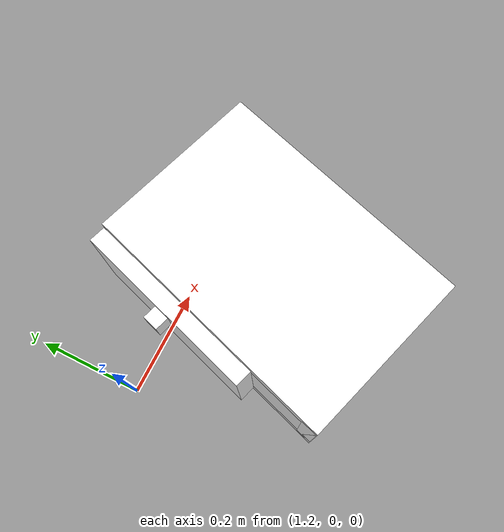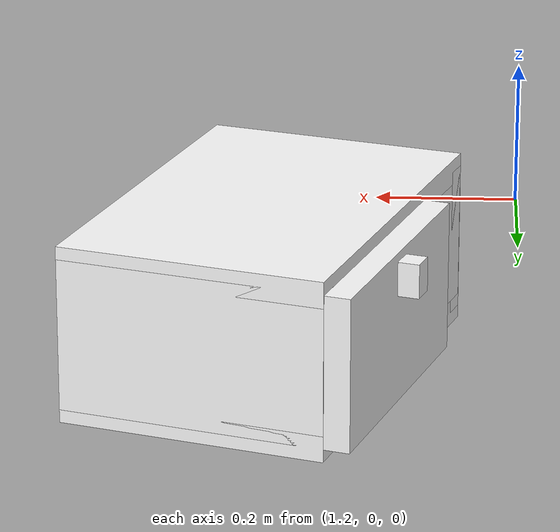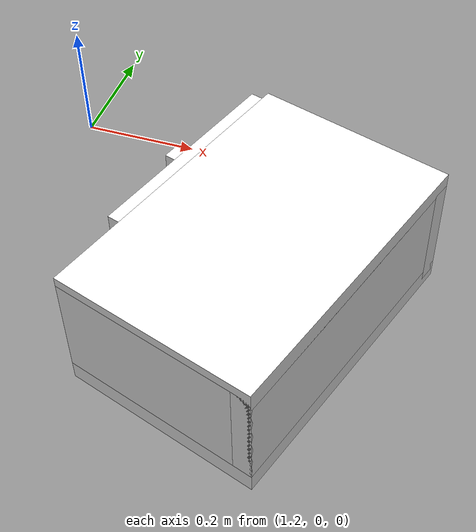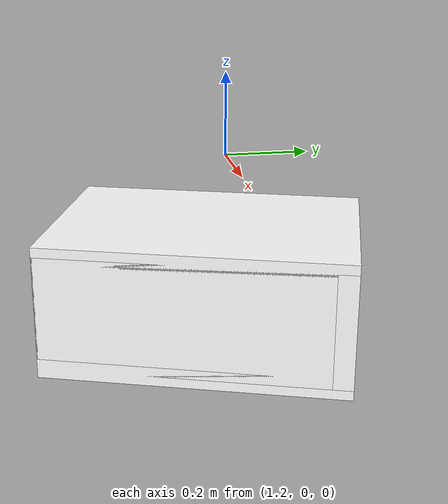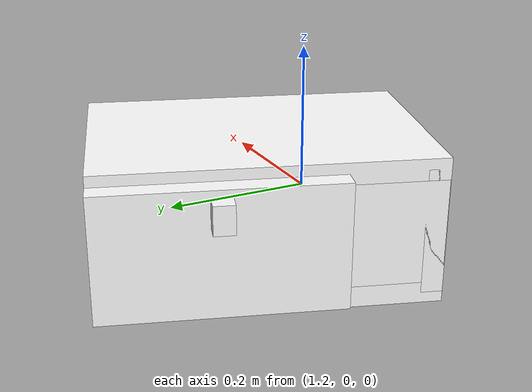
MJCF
<mujoco model="cabinet">
    <compiler angle="radian" eulerseq='zxy' />
    <option gravity = "0 0 0" />
    <option>
        <flag contact = "disable"/>
    </option>
    <statistic	extent="1.0" center="0.0 0.0 0.0"/>
    <visual>
        <map fogstart="3" fogend="5" force="0.1" znear=" 0.100000 " zfar=" 12.000000 "/>
    </visual>
    <size njmax="500" nconmax="100" />
    <actuator>
        <velocity joint="bottom_left_hinge" name="viva_revolution" kv='10'></velocity>
    </actuator>
    <asset>
        <texture builtin="flat" name="tabletex" height="32" width="32" rgb1="1 1 1" type="cube"></texture>
        <texture builtin="flat" name="objtex" height="32" width="32" rgb1="1 1 1" type="cube"></texture>
        <texture builtin="flat" name="handletex" height="32" width="32" rgb1="1 1 1" type="cube"></texture>
        <texture builtin="flat" name="wallpaper" height="32" width="32" rgb1="1 1 1" type="cube"></texture>
        <texture builtin="flat" name="kp" height="32" width="32" rgb1="1 1 1" type="cube"></texture>
        <material name="geomTable" shininess="0.03" specular="0.75" texture="tabletex"></material>
        <material name="geomObj" shininess="0.03" specular="0.75" texture="objtex"></material>
        <material name="geomHandle" shininess="0.03" specular="0.75" texture="handletex"></material>
        <material name="bg" shininess="0.03" specular="0.75" texture="wallpaper"></material>
        <material name="geomKeypad" shininess="0.03" specular="0.75" texture="kp"></material>
    </asset>
    <worldbody>
        <body name="cabinet_bottom" pos= " 1.564281 -0.104665 -0.289532 "  quat= " 0.155596 0.000000 0.000000 0.987821" >
            <inertial pos="0 0 0" mass="1" diaginertia="1 1 1" />
            <geom size= " 0.202592 0.304185 0.019648 "  type="box" material="geomObj" name="b"/>
            <body name="cabinet_left" pos= " 0.000000 -0.284537 0.115133 " >
                <inertial pos="0 0 0" mass="1" diaginertia="1 1 1" />
                <geom size= " 0.202592 0.019648 0.115133 "  type="box" material="geomObj" name="c" />
            </body>
            <body name="cabinet_right" pos= " 0.000000 0.284537 0.115133 " >
                <inertial pos="0 0 0" mass="1" diaginertia="1 1 1" />
                <geom size= " 0.202592 0.019648 0.115133 "  type="box" material="geomObj" name="d" />
            </body>
            <body name="cabinet_top" pos= " 0.000000 0.000000 0.230266 " >
                <inertial pos="0 0 0" mass="1" diaginertia="1 1 1" />
                <geom size= " 0.202592 0.304185 0.019648 "  type="box" material="geomObj" name="e"/>
            </body>
            <body name="cabinet_back" pos= " -0.182944 0.000000 0.115133 "  >
                <inertial pos="0 0 0" mass="1" diaginertia="1 1 1" />
                <geom size= " 0.019648 0.304185 0.115133 "  type="box" material="geomObj" name="f" />
            </body>
            <body name="cabinet_keypad" pos= " 0.019648 0.215454 0.115133 " >
                <inertial pos="0 0 0" mass="1" diaginertia="1 1 1" />
                <geom size= " 0.182944 0.087730 0.095485 "  type="box" material="geomKeypad" name="keypizzlemynizzle" />
            </body>
            <body name="cabinet_left_hinge" pos= " 0.202592 -0.087730 0.000000 " >
                <inertial pos= " 0.020000 0.000000 0.115133 "  mass="1" diaginertia="1 1 1" />
                <joint name="bottom_left_hinge" type="hinge" pos="0 0 0" axis="0 1 0" limited="true" range= "0 2.3"  />
                <geom size= " 0.019648 0.216454 0.115133 "  pos= " 0.020000 0.000000 0.115133 "  type="box" material="geomObj" name="g"/>
                <body name="handle_link" pos= " 0.050648 0.000000 0.190970 " >
                    <inertial pos="0 0 0" mass="1" diaginertia="1 1 1" />
                    <geom size= " 0.021538 0.018571 0.025885 "  type="box" material="geomHandle" name="h"/>
                </body>
            </body>
        </body>
        <body name="external_camera_body_0" pos="0.0 0 0.00">
            <camera euler="-1.57 1.57 0.0" fovy=" 54.280851 " name="external_camera_0" pos="0.0 0 0"></camera>
            <inertial pos= " 0.00 0.0 0.000000 " mass="1" diaginertia="1 1 1" />
            <joint name="cam_j" pos="0.0 0 0" axis = "1 0 0" type="free" />
        </body>
    </worldbody>
</mujoco>
